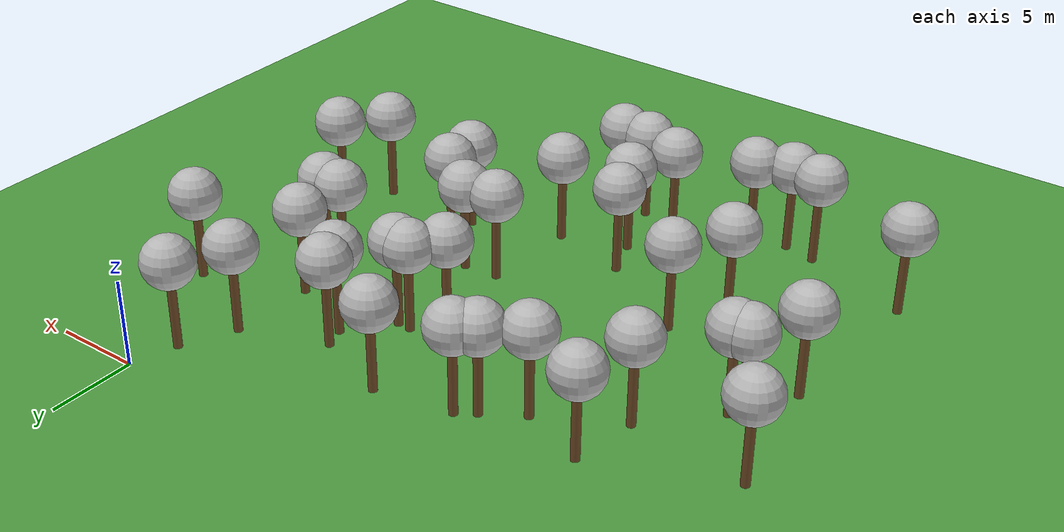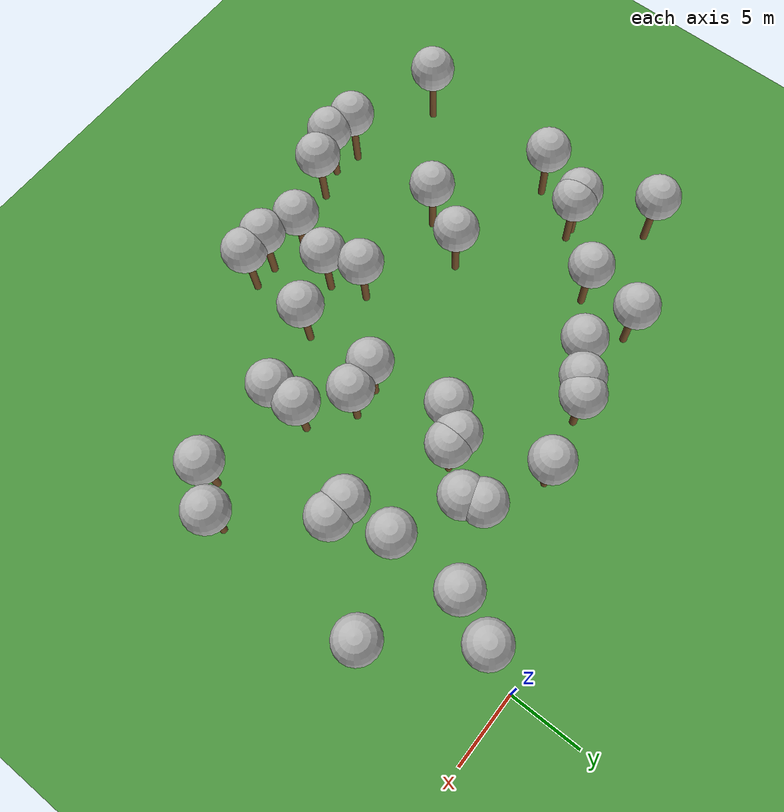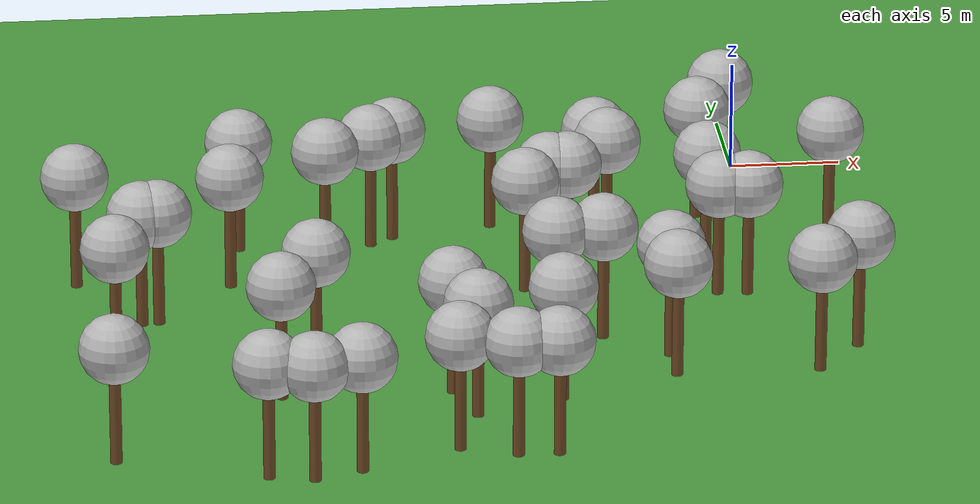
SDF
<sdf version="1.5">
 <world name="default">
  <model name="tree_simple418">
   <static>1</static>
   <link name="link">
    <pose>0 0 0.1 0 -0 0</pose>
    <collision name="collision_trunk">
     <pose>0 0 2 0 -0 0</pose>
     <geometry><cylinder><radius>0.25</radius><length>4</length></cylinder></geometry>
    </collision>
    <collision name="collision_treetop">
     <pose>0 0 5.2 0 -0 0</pose>
     <geometry><sphere><radius>1.5</radius></sphere></geometry>
    </collision>
    <visual name="trunk">
     <pose>0 0 2 0 -0 0</pose>
     <geometry><cylinder><radius>0.25</radius><length>4</length></cylinder></geometry>
     <material>
      <script>
       <uri>model://tree_simple/scripts</uri>
       <uri>model://tree_simple/materials/textures</uri>
       <name>TreeSimple/Trunk</name>
      </script>
     </material>
    </visual>
    <visual name="treetop">
     <pose>0 0 5.2 0 -0 0</pose>
     <geometry><sphere><radius>1.5</radius></sphere></geometry>
     <material>
      <script>
       <uri>model://tree_simple/scripts</uri>
       <uri>model://tree_simple/materials/textures</uri>
       <name>TreeSimple/Treetop</name>
      </script>
     </material>
    </visual>
   </link>
   <pose>-22.9841604277 -7.39292719752 0 0 -0 0</pose>
  </model>
  <model name="tree_simple415">
   <static>1</static>
   <link name="link">
    <pose>0 0 0.1 0 -0 0</pose>
    <collision name="collision_trunk">
     <pose>0 0 2 0 -0 0</pose>
     <geometry><cylinder><radius>0.25</radius><length>4</length></cylinder></geometry>
    </collision>
    <collision name="collision_treetop">
     <pose>0 0 5.2 0 -0 0</pose>
     <geometry><sphere><radius>1.5</radius></sphere></geometry>
    </collision>
    <visual name="trunk">
     <pose>0 0 2 0 -0 0</pose>
     <geometry><cylinder><radius>0.25</radius><length>4</length></cylinder></geometry>
     <material>
      <script>
       <uri>model://tree_simple/scripts</uri>
       <uri>model://tree_simple/materials/textures</uri>
       <name>TreeSimple/Trunk</name>
      </script>
     </material>
    </visual>
    <visual name="treetop">
     <pose>0 0 5.2 0 -0 0</pose>
     <geometry><sphere><radius>1.5</radius></sphere></geometry>
     <material>
      <script>
       <uri>model://tree_simple/scripts</uri>
       <uri>model://tree_simple/materials/textures</uri>
       <name>TreeSimple/Treetop</name>
      </script>
     </material>
    </visual>
   </link>
   <pose>-11.6355979465 -5.8252534874 0 0 -0 0</pose>
  </model>
  <model name="tree_simple395">
   <static>1</static>
   <link name="link">
    <pose>0 0 0.1 0 -0 0</pose>
    <collision name="collision_trunk">
     <pose>0 0 2 0 -0 0</pose>
     <geometry><cylinder><radius>0.25</radius><length>4</length></cylinder></geometry>
    </collision>
    <collision name="collision_treetop">
     <pose>0 0 5.2 0 -0 0</pose>
     <geometry><sphere><radius>1.5</radius></sphere></geometry>
    </collision>
    <visual name="trunk">
     <pose>0 0 2 0 -0 0</pose>
     <geometry><cylinder><radius>0.25</radius><length>4</length></cylinder></geometry>
     <material>
      <script>
       <uri>model://tree_simple/scripts</uri>
       <uri>model://tree_simple/materials/textures</uri>
       <name>TreeSimple/Trunk</name>
      </script>
     </material>
    </visual>
    <visual name="treetop">
     <pose>0 0 5.2 0 -0 0</pose>
     <geometry><sphere><radius>1.5</radius></sphere></geometry>
     <material>
      <script>
       <uri>model://tree_simple/scripts</uri>
       <uri>model://tree_simple/materials/textures</uri>
       <name>TreeSimple/Treetop</name>
      </script>
     </material>
    </visual>
   </link>
   <pose>-14.8909068885 -23.0244241553 0 0 -0 0</pose>
  </model>
  <model name="tree_simple392">
   <static>1</static>
   <link name="link">
    <pose>0 0 0.1 0 -0 0</pose>
    <collision name="collision_trunk">
     <pose>0 0 2 0 -0 0</pose>
     <geometry><cylinder><radius>0.25</radius><length>4</length></cylinder></geometry>
    </collision>
    <collision name="collision_treetop">
     <pose>0 0 5.2 0 -0 0</pose>
     <geometry><sphere><radius>1.5</radius></sphere></geometry>
    </collision>
    <visual name="trunk">
     <pose>0 0 2 0 -0 0</pose>
     <geometry><cylinder><radius>0.25</radius><length>4</length></cylinder></geometry>
     <material>
      <script>
       <uri>model://tree_simple/scripts</uri>
       <uri>model://tree_simple/materials/textures</uri>
       <name>TreeSimple/Trunk</name>
      </script>
     </material>
    </visual>
    <visual name="treetop">
     <pose>0 0 5.2 0 -0 0</pose>
     <geometry><sphere><radius>1.5</radius></sphere></geometry>
     <material>
      <script>
       <uri>model://tree_simple/scripts</uri>
       <uri>model://tree_simple/materials/textures</uri>
       <name>TreeSimple/Treetop</name>
      </script>
     </material>
    </visual>
   </link>
   <pose>-2.49227665262 -10.6347787598 0 0 -0 0</pose>
  </model>
  <model name="tree_simple386">
   <static>1</static>
   <link name="link">
    <pose>0 0 0.1 0 -0 0</pose>
    <collision name="collision_trunk">
     <pose>0 0 2 0 -0 0</pose>
     <geometry><cylinder><radius>0.25</radius><length>4</length></cylinder></geometry>
    </collision>
    <collision name="collision_treetop">
     <pose>0 0 5.2 0 -0 0</pose>
     <geometry><sphere><radius>1.5</radius></sphere></geometry>
    </collision>
    <visual name="trunk">
     <pose>0 0 2 0 -0 0</pose>
     <geometry><cylinder><radius>0.25</radius><length>4</length></cylinder></geometry>
     <material>
      <script>
       <uri>model://tree_simple/scripts</uri>
       <uri>model://tree_simple/materials/textures</uri>
       <name>TreeSimple/Trunk</name>
      </script>
     </material>
    </visual>
    <visual name="treetop">
     <pose>0 0 5.2 0 -0 0</pose>
     <geometry><sphere><radius>1.5</radius></sphere></geometry>
     <material>
      <script>
       <uri>model://tree_simple/scripts</uri>
       <uri>model://tree_simple/materials/textures</uri>
       <name>TreeSimple/Treetop</name>
      </script>
     </material>
    </visual>
   </link>
   <pose>-19.2490777258 -8.77456979873 0 0 -0 0</pose>
  </model>
  <model name="tree_simple371">
   <static>1</static>
   <link name="link">
    <pose>0 0 0.1 0 -0 0</pose>
    <collision name="collision_trunk">
     <pose>0 0 2 0 -0 0</pose>
     <geometry><cylinder><radius>0.25</radius><length>4</length></cylinder></geometry>
    </collision>
    <collision name="collision_treetop">
     <pose>0 0 5.2 0 -0 0</pose>
     <geometry><sphere><radius>1.5</radius></sphere></geometry>
    </collision>
    <visual name="trunk">
     <pose>0 0 2 0 -0 0</pose>
     <geometry><cylinder><radius>0.25</radius><length>4</length></cylinder></geometry>
     <material>
      <script>
       <uri>model://tree_simple/scripts</uri>
       <uri>model://tree_simple/materials/textures</uri>
       <name>TreeSimple/Trunk</name>
      </script>
     </material>
    </visual>
    <visual name="treetop">
     <pose>0 0 5.2 0 -0 0</pose>
     <geometry><sphere><radius>1.5</radius></sphere></geometry>
     <material>
      <script>
       <uri>model://tree_simple/scripts</uri>
       <uri>model://tree_simple/materials/textures</uri>
       <name>TreeSimple/Treetop</name>
      </script>
     </material>
    </visual>
   </link>
   <pose>-15.0952400949 -28.608477139 0 0 -0 0</pose>
  </model>
  <model name="tree_simple364">
   <static>1</static>
   <link name="link">
    <pose>0 0 0.1 0 -0 0</pose>
    <collision name="collision_trunk">
     <pose>0 0 2 0 -0 0</pose>
     <geometry><cylinder><radius>0.25</radius><length>4</length></cylinder></geometry>
    </collision>
    <collision name="collision_treetop">
     <pose>0 0 5.2 0 -0 0</pose>
     <geometry><sphere><radius>1.5</radius></sphere></geometry>
    </collision>
    <visual name="trunk">
     <pose>0 0 2 0 -0 0</pose>
     <geometry><cylinder><radius>0.25</radius><length>4</length></cylinder></geometry>
     <material>
      <script>
       <uri>model://tree_simple/scripts</uri>
       <uri>model://tree_simple/materials/textures</uri>
       <name>TreeSimple/Trunk</name>
      </script>
     </material>
    </visual>
    <visual name="treetop">
     <pose>0 0 5.2 0 -0 0</pose>
     <geometry><sphere><radius>1.5</radius></sphere></geometry>
     <material>
      <script>
       <uri>model://tree_simple/scripts</uri>
       <uri>model://tree_simple/materials/textures</uri>
       <name>TreeSimple/Treetop</name>
      </script>
     </material>
    </visual>
   </link>
   <pose>-5.23612591395 -20.1562951187 0 0 -0 0</pose>
  </model>
  <model name="tree_simple349">
   <static>1</static>
   <link name="link">
    <pose>0 0 0.1 0 -0 0</pose>
    <collision name="collision_trunk">
     <pose>0 0 2 0 -0 0</pose>
     <geometry><cylinder><radius>0.25</radius><length>4</length></cylinder></geometry>
    </collision>
    <collision name="collision_treetop">
     <pose>0 0 5.2 0 -0 0</pose>
     <geometry><sphere><radius>1.5</radius></sphere></geometry>
    </collision>
    <visual name="trunk">
     <pose>0 0 2 0 -0 0</pose>
     <geometry><cylinder><radius>0.25</radius><length>4</length></cylinder></geometry>
     <material>
      <script>
       <uri>model://tree_simple/scripts</uri>
       <uri>model://tree_simple/materials/textures</uri>
       <name>TreeSimple/Trunk</name>
      </script>
     </material>
    </visual>
    <visual name="treetop">
     <pose>0 0 5.2 0 -0 0</pose>
     <geometry><sphere><radius>1.5</radius></sphere></geometry>
     <material>
      <script>
       <uri>model://tree_simple/scripts</uri>
       <uri>model://tree_simple/materials/textures</uri>
       <name>TreeSimple/Treetop</name>
      </script>
     </material>
    </visual>
   </link>
   <pose>-20.4686708935 -19.6389151122 0 0 -0 0</pose>
  </model>
  <model name="tree_simple347">
   <static>1</static>
   <link name="link">
    <pose>0 0 0.1 0 -0 0</pose>
    <collision name="collision_trunk">
     <pose>0 0 2 0 -0 0</pose>
     <geometry><cylinder><radius>0.25</radius><length>4</length></cylinder></geometry>
    </collision>
    <collision name="collision_treetop">
     <pose>0 0 5.2 0 -0 0</pose>
     <geometry><sphere><radius>1.5</radius></sphere></geometry>
    </collision>
    <visual name="trunk">
     <pose>0 0 2 0 -0 0</pose>
     <geometry><cylinder><radius>0.25</radius><length>4</length></cylinder></geometry>
     <material>
      <script>
       <uri>model://tree_simple/scripts</uri>
       <uri>model://tree_simple/materials/textures</uri>
       <name>TreeSimple/Trunk</name>
      </script>
     </material>
    </visual>
    <visual name="treetop">
     <pose>0 0 5.2 0 -0 0</pose>
     <geometry><sphere><radius>1.5</radius></sphere></geometry>
     <material>
      <script>
       <uri>model://tree_simple/scripts</uri>
       <uri>model://tree_simple/materials/textures</uri>
       <name>TreeSimple/Treetop</name>
      </script>
     </material>
    </visual>
   </link>
   <pose>-10.2981062424 -24.1175281228 0 0 -0 0</pose>
  </model>
  <model name="tree_simple322">
   <static>1</static>
   <link name="link">
    <pose>0 0 0.1 0 -0 0</pose>
    <collision name="collision_trunk">
     <pose>0 0 2 0 -0 0</pose>
     <geometry><cylinder><radius>0.25</radius><length>4</length></cylinder></geometry>
    </collision>
    <collision name="collision_treetop">
     <pose>0 0 5.2 0 -0 0</pose>
     <geometry><sphere><radius>1.5</radius></sphere></geometry>
    </collision>
    <visual name="trunk">
     <pose>0 0 2 0 -0 0</pose>
     <geometry><cylinder><radius>0.25</radius><length>4</length></cylinder></geometry>
     <material>
      <script>
       <uri>model://tree_simple/scripts</uri>
       <uri>model://tree_simple/materials/textures</uri>
       <name>TreeSimple/Trunk</name>
      </script>
     </material>
    </visual>
    <visual name="treetop">
     <pose>0 0 5.2 0 -0 0</pose>
     <geometry><sphere><radius>1.5</radius></sphere></geometry>
     <material>
      <script>
       <uri>model://tree_simple/scripts</uri>
       <uri>model://tree_simple/materials/textures</uri>
       <name>TreeSimple/Treetop</name>
      </script>
     </material>
    </visual>
   </link>
   <pose>-10.7837387112 -12.8598856653 0 0 -0 0</pose>
  </model>
  <model name="tree_simple317">
   <static>1</static>
   <link name="link">
    <pose>0 0 0.1 0 -0 0</pose>
    <collision name="collision_trunk">
     <pose>0 0 2 0 -0 0</pose>
     <geometry><cylinder><radius>0.25</radius><length>4</length></cylinder></geometry>
    </collision>
    <collision name="collision_treetop">
     <pose>0 0 5.2 0 -0 0</pose>
     <geometry><sphere><radius>1.5</radius></sphere></geometry>
    </collision>
    <visual name="trunk">
     <pose>0 0 2 0 -0 0</pose>
     <geometry><cylinder><radius>0.25</radius><length>4</length></cylinder></geometry>
     <material>
      <script>
       <uri>model://tree_simple/scripts</uri>
       <uri>model://tree_simple/materials/textures</uri>
       <name>TreeSimple/Trunk</name>
      </script>
     </material>
    </visual>
    <visual name="treetop">
     <pose>0 0 5.2 0 -0 0</pose>
     <geometry><sphere><radius>1.5</radius></sphere></geometry>
     <material>
      <script>
       <uri>model://tree_simple/scripts</uri>
       <uri>model://tree_simple/materials/textures</uri>
       <name>TreeSimple/Treetop</name>
      </script>
     </material>
    </visual>
   </link>
   <pose>1.01183279708 -22.2370296953 0 0 -0 0</pose>
  </model>
  <model name="tree_simple303">
   <static>1</static>
   <link name="link">
    <pose>0 0 0.1 0 -0 0</pose>
    <collision name="collision_trunk">
     <pose>0 0 2 0 -0 0</pose>
     <geometry><cylinder><radius>0.25</radius><length>4</length></cylinder></geometry>
    </collision>
    <collision name="collision_treetop">
     <pose>0 0 5.2 0 -0 0</pose>
     <geometry><sphere><radius>1.5</radius></sphere></geometry>
    </collision>
    <visual name="trunk">
     <pose>0 0 2 0 -0 0</pose>
     <geometry><cylinder><radius>0.25</radius><length>4</length></cylinder></geometry>
     <material>
      <script>
       <uri>model://tree_simple/scripts</uri>
       <uri>model://tree_simple/materials/textures</uri>
       <name>TreeSimple/Trunk</name>
      </script>
     </material>
    </visual>
    <visual name="treetop">
     <pose>0 0 5.2 0 -0 0</pose>
     <geometry><sphere><radius>1.5</radius></sphere></geometry>
     <material>
      <script>
       <uri>model://tree_simple/scripts</uri>
       <uri>model://tree_simple/materials/textures</uri>
       <name>TreeSimple/Treetop</name>
      </script>
     </material>
    </visual>
   </link>
   <pose>-9.56094886719 -11.2139048457 0 0 -0 0</pose>
  </model>
  <model name="tree_simple276">
   <static>1</static>
   <link name="link">
    <pose>0 0 0.1 0 -0 0</pose>
    <collision name="collision_trunk">
     <pose>0 0 2 0 -0 0</pose>
     <geometry><cylinder><radius>0.25</radius><length>4</length></cylinder></geometry>
    </collision>
    <collision name="collision_treetop">
     <pose>0 0 5.2 0 -0 0</pose>
     <geometry><sphere><radius>1.5</radius></sphere></geometry>
    </collision>
    <visual name="trunk">
     <pose>0 0 2 0 -0 0</pose>
     <geometry><cylinder><radius>0.25</radius><length>4</length></cylinder></geometry>
     <material>
      <script>
       <uri>model://tree_simple/scripts</uri>
       <uri>model://tree_simple/materials/textures</uri>
       <name>TreeSimple/Trunk</name>
      </script>
     </material>
    </visual>
    <visual name="treetop">
     <pose>0 0 5.2 0 -0 0</pose>
     <geometry><sphere><radius>1.5</radius></sphere></geometry>
     <material>
      <script>
       <uri>model://tree_simple/scripts</uri>
       <uri>model://tree_simple/materials/textures</uri>
       <name>TreeSimple/Treetop</name>
      </script>
     </material>
    </visual>
   </link>
   <pose>-29.5152065305 -28.5569261037 0 0 -0 0</pose>
  </model>
  <model name="tree_simple272">
   <static>1</static>
   <link name="link">
    <pose>0 0 0.1 0 -0 0</pose>
    <collision name="collision_trunk">
     <pose>0 0 2 0 -0 0</pose>
     <geometry><cylinder><radius>0.25</radius><length>4</length></cylinder></geometry>
    </collision>
    <collision name="collision_treetop">
     <pose>0 0 5.2 0 -0 0</pose>
     <geometry><sphere><radius>1.5</radius></sphere></geometry>
    </collision>
    <visual name="trunk">
     <pose>0 0 2 0 -0 0</pose>
     <geometry><cylinder><radius>0.25</radius><length>4</length></cylinder></geometry>
     <material>
      <script>
       <uri>model://tree_simple/scripts</uri>
       <uri>model://tree_simple/materials/textures</uri>
       <name>TreeSimple/Trunk</name>
      </script>
     </material>
    </visual>
    <visual name="treetop">
     <pose>0 0 5.2 0 -0 0</pose>
     <geometry><sphere><radius>1.5</radius></sphere></geometry>
     <material>
      <script>
       <uri>model://tree_simple/scripts</uri>
       <uri>model://tree_simple/materials/textures</uri>
       <name>TreeSimple/Treetop</name>
      </script>
     </material>
    </visual>
   </link>
   <pose>-28.9961141051 -18.3973115949 0 0 -0 0</pose>
  </model>
  <model name="tree_simple268">
   <static>1</static>
   <link name="link">
    <pose>0 0 0.1 0 -0 0</pose>
    <collision name="collision_trunk">
     <pose>0 0 2 0 -0 0</pose>
     <geometry><cylinder><radius>0.25</radius><length>4</length></cylinder></geometry>
    </collision>
    <collision name="collision_treetop">
     <pose>0 0 5.2 0 -0 0</pose>
     <geometry><sphere><radius>1.5</radius></sphere></geometry>
    </collision>
    <visual name="trunk">
     <pose>0 0 2 0 -0 0</pose>
     <geometry><cylinder><radius>0.25</radius><length>4</length></cylinder></geometry>
     <material>
      <script>
       <uri>model://tree_simple/scripts</uri>
       <uri>model://tree_simple/materials/textures</uri>
       <name>TreeSimple/Trunk</name>
      </script>
     </material>
    </visual>
    <visual name="treetop">
     <pose>0 0 5.2 0 -0 0</pose>
     <geometry><sphere><radius>1.5</radius></sphere></geometry>
     <material>
      <script>
       <uri>model://tree_simple/scripts</uri>
       <uri>model://tree_simple/materials/textures</uri>
       <name>TreeSimple/Treetop</name>
      </script>
     </material>
    </visual>
   </link>
   <pose>-9.9717965144 -18.2645258901 0 0 -0 0</pose>
  </model>
  <model name="tree_simple262">
   <static>1</static>
   <link name="link">
    <pose>0 0 0.1 0 -0 0</pose>
    <collision name="collision_trunk">
     <pose>0 0 2 0 -0 0</pose>
     <geometry><cylinder><radius>0.25</radius><length>4</length></cylinder></geometry>
    </collision>
    <collision name="collision_treetop">
     <pose>0 0 5.2 0 -0 0</pose>
     <geometry><sphere><radius>1.5</radius></sphere></geometry>
    </collision>
    <visual name="trunk">
     <pose>0 0 2 0 -0 0</pose>
     <geometry><cylinder><radius>0.25</radius><length>4</length></cylinder></geometry>
     <material>
      <script>
       <uri>model://tree_simple/scripts</uri>
       <uri>model://tree_simple/materials/textures</uri>
       <name>TreeSimple/Trunk</name>
      </script>
     </material>
    </visual>
    <visual name="treetop">
     <pose>0 0 5.2 0 -0 0</pose>
     <geometry><sphere><radius>1.5</radius></sphere></geometry>
     <material>
      <script>
       <uri>model://tree_simple/scripts</uri>
       <uri>model://tree_simple/materials/textures</uri>
       <name>TreeSimple/Treetop</name>
      </script>
     </material>
    </visual>
   </link>
   <pose>-23.2560890967 -30.6191265847 0 0 -0 0</pose>
  </model>
  <model name="tree_simple253">
   <static>1</static>
   <link name="link">
    <pose>0 0 0.1 0 -0 0</pose>
    <collision name="collision_trunk">
     <pose>0 0 2 0 -0 0</pose>
     <geometry><cylinder><radius>0.25</radius><length>4</length></cylinder></geometry>
    </collision>
    <collision name="collision_treetop">
     <pose>0 0 5.2 0 -0 0</pose>
     <geometry><sphere><radius>1.5</radius></sphere></geometry>
    </collision>
    <visual name="trunk">
     <pose>0 0 2 0 -0 0</pose>
     <geometry><cylinder><radius>0.25</radius><length>4</length></cylinder></geometry>
     <material>
      <script>
       <uri>model://tree_simple/scripts</uri>
       <uri>model://tree_simple/materials/textures</uri>
       <name>TreeSimple/Trunk</name>
      </script>
     </material>
    </visual>
    <visual name="treetop">
     <pose>0 0 5.2 0 -0 0</pose>
     <geometry><sphere><radius>1.5</radius></sphere></geometry>
     <material>
      <script>
       <uri>model://tree_simple/scripts</uri>
       <uri>model://tree_simple/materials/textures</uri>
       <name>TreeSimple/Treetop</name>
      </script>
     </material>
    </visual>
   </link>
   <pose>-6.71887912458 -8.7537434381 0 0 -0 0</pose>
  </model>
  <model name="tree_simple234">
   <static>1</static>
   <link name="link">
    <pose>0 0 0.1 0 -0 0</pose>
    <collision name="collision_trunk">
     <pose>0 0 2 0 -0 0</pose>
     <geometry><cylinder><radius>0.25</radius><length>4</length></cylinder></geometry>
    </collision>
    <collision name="collision_treetop">
     <pose>0 0 5.2 0 -0 0</pose>
     <geometry><sphere><radius>1.5</radius></sphere></geometry>
    </collision>
    <visual name="trunk">
     <pose>0 0 2 0 -0 0</pose>
     <geometry><cylinder><radius>0.25</radius><length>4</length></cylinder></geometry>
     <material>
      <script>
       <uri>model://tree_simple/scripts</uri>
       <uri>model://tree_simple/materials/textures</uri>
       <name>TreeSimple/Trunk</name>
      </script>
     </material>
    </visual>
    <visual name="treetop">
     <pose>0 0 5.2 0 -0 0</pose>
     <geometry><sphere><radius>1.5</radius></sphere></geometry>
     <material>
      <script>
       <uri>model://tree_simple/scripts</uri>
       <uri>model://tree_simple/materials/textures</uri>
       <name>TreeSimple/Treetop</name>
      </script>
     </material>
    </visual>
   </link>
   <pose>-7.13671903639 -7.51188908491 0 0 -0 0</pose>
  </model>
  <model name="tree_simple201">
   <static>1</static>
   <link name="link">
    <pose>0 0 0.1 0 -0 0</pose>
    <collision name="collision_trunk">
     <pose>0 0 2 0 -0 0</pose>
     <geometry><cylinder><radius>0.25</radius><length>4</length></cylinder></geometry>
    </collision>
    <collision name="collision_treetop">
     <pose>0 0 5.2 0 -0 0</pose>
     <geometry><sphere><radius>1.5</radius></sphere></geometry>
    </collision>
    <visual name="trunk">
     <pose>0 0 2 0 -0 0</pose>
     <geometry><cylinder><radius>0.25</radius><length>4</length></cylinder></geometry>
     <material>
      <script>
       <uri>model://tree_simple/scripts</uri>
       <uri>model://tree_simple/materials/textures</uri>
       <name>TreeSimple/Trunk</name>
      </script>
     </material>
    </visual>
    <visual name="treetop">
     <pose>0 0 5.2 0 -0 0</pose>
     <geometry><sphere><radius>1.5</radius></sphere></geometry>
     <material>
      <script>
       <uri>model://tree_simple/scripts</uri>
       <uri>model://tree_simple/materials/textures</uri>
       <name>TreeSimple/Treetop</name>
      </script>
     </material>
    </visual>
   </link>
   <pose>-16.1062713361 -6.72563548396 0 0 -0 0</pose>
  </model>
  <model name="tree_simple200">
   <static>1</static>
   <link name="link">
    <pose>0 0 0.1 0 -0 0</pose>
    <collision name="collision_trunk">
     <pose>0 0 2 0 -0 0</pose>
     <geometry><cylinder><radius>0.25</radius><length>4</length></cylinder></geometry>
    </collision>
    <collision name="collision_treetop">
     <pose>0 0 5.2 0 -0 0</pose>
     <geometry><sphere><radius>1.5</radius></sphere></geometry>
    </collision>
    <visual name="trunk">
     <pose>0 0 2 0 -0 0</pose>
     <geometry><cylinder><radius>0.25</radius><length>4</length></cylinder></geometry>
     <material>
      <script>
       <uri>model://tree_simple/scripts</uri>
       <uri>model://tree_simple/materials/textures</uri>
       <name>TreeSimple/Trunk</name>
      </script>
     </material>
    </visual>
    <visual name="treetop">
     <pose>0 0 5.2 0 -0 0</pose>
     <geometry><sphere><radius>1.5</radius></sphere></geometry>
     <material>
      <script>
       <uri>model://tree_simple/scripts</uri>
       <uri>model://tree_simple/materials/textures</uri>
       <name>TreeSimple/Treetop</name>
      </script>
     </material>
    </visual>
   </link>
   <pose>-22.1853775811 -22.9371972628 0 0 -0 0</pose>
  </model>
  <model name="tree_simple195">
   <static>1</static>
   <link name="link">
    <pose>0 0 0.1 0 -0 0</pose>
    <collision name="collision_trunk">
     <pose>0 0 2 0 -0 0</pose>
     <geometry><cylinder><radius>0.25</radius><length>4</length></cylinder></geometry>
    </collision>
    <collision name="collision_treetop">
     <pose>0 0 5.2 0 -0 0</pose>
     <geometry><sphere><radius>1.5</radius></sphere></geometry>
    </collision>
    <visual name="trunk">
     <pose>0 0 2 0 -0 0</pose>
     <geometry><cylinder><radius>0.25</radius><length>4</length></cylinder></geometry>
     <material>
      <script>
       <uri>model://tree_simple/scripts</uri>
       <uri>model://tree_simple/materials/textures</uri>
       <name>TreeSimple/Trunk</name>
      </script>
     </material>
    </visual>
    <visual name="treetop">
     <pose>0 0 5.2 0 -0 0</pose>
     <geometry><sphere><radius>1.5</radius></sphere></geometry>
     <material>
      <script>
       <uri>model://tree_simple/scripts</uri>
       <uri>model://tree_simple/materials/textures</uri>
       <name>TreeSimple/Treetop</name>
      </script>
     </material>
    </visual>
   </link>
   <pose>2.97634626893 -19.931363898 0 0 -0 0</pose>
  </model>
  <model name="tree_simple194">
   <static>1</static>
   <link name="link">
    <pose>0 0 0.1 0 -0 0</pose>
    <collision name="collision_trunk">
     <pose>0 0 2 0 -0 0</pose>
     <geometry><cylinder><radius>0.25</radius><length>4</length></cylinder></geometry>
    </collision>
    <collision name="collision_treetop">
     <pose>0 0 5.2 0 -0 0</pose>
     <geometry><sphere><radius>1.5</radius></sphere></geometry>
    </collision>
    <visual name="trunk">
     <pose>0 0 2 0 -0 0</pose>
     <geometry><cylinder><radius>0.25</radius><length>4</length></cylinder></geometry>
     <material>
      <script>
       <uri>model://tree_simple/scripts</uri>
       <uri>model://tree_simple/materials/textures</uri>
       <name>TreeSimple/Trunk</name>
      </script>
     </material>
    </visual>
    <visual name="treetop">
     <pose>0 0 5.2 0 -0 0</pose>
     <geometry><sphere><radius>1.5</radius></sphere></geometry>
     <material>
      <script>
       <uri>model://tree_simple/scripts</uri>
       <uri>model://tree_simple/materials/textures</uri>
       <name>TreeSimple/Treetop</name>
      </script>
     </material>
    </visual>
   </link>
   <pose>-23.6189562951 -11.2622665902 0 0 -0 0</pose>
  </model>
  <model name="tree_simple166">
   <static>1</static>
   <link name="link">
    <pose>0 0 0.1 0 -0 0</pose>
    <collision name="collision_trunk">
     <pose>0 0 2 0 -0 0</pose>
     <geometry><cylinder><radius>0.25</radius><length>4</length></cylinder></geometry>
    </collision>
    <collision name="collision_treetop">
     <pose>0 0 5.2 0 -0 0</pose>
     <geometry><sphere><radius>1.5</radius></sphere></geometry>
    </collision>
    <visual name="trunk">
     <pose>0 0 2 0 -0 0</pose>
     <geometry><cylinder><radius>0.25</radius><length>4</length></cylinder></geometry>
     <material>
      <script>
       <uri>model://tree_simple/scripts</uri>
       <uri>model://tree_simple/materials/textures</uri>
       <name>TreeSimple/Trunk</name>
      </script>
     </material>
    </visual>
    <visual name="treetop">
     <pose>0 0 5.2 0 -0 0</pose>
     <geometry><sphere><radius>1.5</radius></sphere></geometry>
     <material>
      <script>
       <uri>model://tree_simple/scripts</uri>
       <uri>model://tree_simple/materials/textures</uri>
       <name>TreeSimple/Treetop</name>
      </script>
     </material>
    </visual>
   </link>
   <pose>-19.3381588268 -30.3399867983 0 0 -0 0</pose>
  </model>
  <model name="tree_simple155">
   <static>1</static>
   <link name="link">
    <pose>0 0 0.1 0 -0 0</pose>
    <collision name="collision_trunk">
     <pose>0 0 2 0 -0 0</pose>
     <geometry><cylinder><radius>0.25</radius><length>4</length></cylinder></geometry>
    </collision>
    <collision name="collision_treetop">
     <pose>0 0 5.2 0 -0 0</pose>
     <geometry><sphere><radius>1.5</radius></sphere></geometry>
    </collision>
    <visual name="trunk">
     <pose>0 0 2 0 -0 0</pose>
     <geometry><cylinder><radius>0.25</radius><length>4</length></cylinder></geometry>
     <material>
      <script>
       <uri>model://tree_simple/scripts</uri>
       <uri>model://tree_simple/materials/textures</uri>
       <name>TreeSimple/Trunk</name>
      </script>
     </material>
    </visual>
    <visual name="treetop">
     <pose>0 0 5.2 0 -0 0</pose>
     <geometry><sphere><radius>1.5</radius></sphere></geometry>
     <material>
      <script>
       <uri>model://tree_simple/scripts</uri>
       <uri>model://tree_simple/materials/textures</uri>
       <name>TreeSimple/Treetop</name>
      </script>
     </material>
    </visual>
   </link>
   <pose>-2.3717624472 -13.9733365428 0 0 -0 0</pose>
  </model>
  <model name="tree_simple154">
   <static>1</static>
   <link name="link">
    <pose>0 0 0.1 0 -0 0</pose>
    <collision name="collision_trunk">
     <pose>0 0 2 0 -0 0</pose>
     <geometry><cylinder><radius>0.25</radius><length>4</length></cylinder></geometry>
    </collision>
    <collision name="collision_treetop">
     <pose>0 0 5.2 0 -0 0</pose>
     <geometry><sphere><radius>1.5</radius></sphere></geometry>
    </collision>
    <visual name="trunk">
     <pose>0 0 2 0 -0 0</pose>
     <geometry><cylinder><radius>0.25</radius><length>4</length></cylinder></geometry>
     <material>
      <script>
       <uri>model://tree_simple/scripts</uri>
       <uri>model://tree_simple/materials/textures</uri>
       <name>TreeSimple/Trunk</name>
      </script>
     </material>
    </visual>
    <visual name="treetop">
     <pose>0 0 5.2 0 -0 0</pose>
     <geometry><sphere><radius>1.5</radius></sphere></geometry>
     <material>
      <script>
       <uri>model://tree_simple/scripts</uri>
       <uri>model://tree_simple/materials/textures</uri>
       <name>TreeSimple/Treetop</name>
      </script>
     </material>
    </visual>
   </link>
   <pose>3.295584565 -8.44091810905 0 0 -0 0</pose>
  </model>
  <model name="tree_simple152">
   <static>1</static>
   <link name="link">
    <pose>0 0 0.1 0 -0 0</pose>
    <collision name="collision_trunk">
     <pose>0 0 2 0 -0 0</pose>
     <geometry><cylinder><radius>0.25</radius><length>4</length></cylinder></geometry>
    </collision>
    <collision name="collision_treetop">
     <pose>0 0 5.2 0 -0 0</pose>
     <geometry><sphere><radius>1.5</radius></sphere></geometry>
    </collision>
    <visual name="trunk">
     <pose>0 0 2 0 -0 0</pose>
     <geometry><cylinder><radius>0.25</radius><length>4</length></cylinder></geometry>
     <material>
      <script>
       <uri>model://tree_simple/scripts</uri>
       <uri>model://tree_simple/materials/textures</uri>
       <name>TreeSimple/Trunk</name>
      </script>
     </material>
    </visual>
    <visual name="treetop">
     <pose>0 0 5.2 0 -0 0</pose>
     <geometry><sphere><radius>1.5</radius></sphere></geometry>
     <material>
      <script>
       <uri>model://tree_simple/scripts</uri>
       <uri>model://tree_simple/materials/textures</uri>
       <name>TreeSimple/Treetop</name>
      </script>
     </material>
    </visual>
   </link>
   <pose>-12.7268570034 -29.4125065477 0 0 -0 0</pose>
  </model>
  <model name="tree_simple149">
   <static>1</static>
   <link name="link">
    <pose>0 0 0.1 0 -0 0</pose>
    <collision name="collision_trunk">
     <pose>0 0 2 0 -0 0</pose>
     <geometry><cylinder><radius>0.25</radius><length>4</length></cylinder></geometry>
    </collision>
    <collision name="collision_treetop">
     <pose>0 0 5.2 0 -0 0</pose>
     <geometry><sphere><radius>1.5</radius></sphere></geometry>
    </collision>
    <visual name="trunk">
     <pose>0 0 2 0 -0 0</pose>
     <geometry><cylinder><radius>0.25</radius><length>4</length></cylinder></geometry>
     <material>
      <script>
       <uri>model://tree_simple/scripts</uri>
       <uri>model://tree_simple/materials/textures</uri>
       <name>TreeSimple/Trunk</name>
      </script>
     </material>
    </visual>
    <visual name="treetop">
     <pose>0 0 5.2 0 -0 0</pose>
     <geometry><sphere><radius>1.5</radius></sphere></geometry>
     <material>
      <script>
       <uri>model://tree_simple/scripts</uri>
       <uri>model://tree_simple/materials/textures</uri>
       <name>TreeSimple/Treetop</name>
      </script>
     </material>
    </visual>
   </link>
   <pose>-30.3771264781 -10.615045033 0 0 -0 0</pose>
  </model>
  <model name="tree_simple140">
   <static>1</static>
   <link name="link">
    <pose>0 0 0.1 0 -0 0</pose>
    <collision name="collision_trunk">
     <pose>0 0 2 0 -0 0</pose>
     <geometry><cylinder><radius>0.25</radius><length>4</length></cylinder></geometry>
    </collision>
    <collision name="collision_treetop">
     <pose>0 0 5.2 0 -0 0</pose>
     <geometry><sphere><radius>1.5</radius></sphere></geometry>
    </collision>
    <visual name="trunk">
     <pose>0 0 2 0 -0 0</pose>
     <geometry><cylinder><radius>0.25</radius><length>4</length></cylinder></geometry>
     <material>
      <script>
       <uri>model://tree_simple/scripts</uri>
       <uri>model://tree_simple/materials/textures</uri>
       <name>TreeSimple/Trunk</name>
      </script>
     </material>
    </visual>
    <visual name="treetop">
     <pose>0 0 5.2 0 -0 0</pose>
     <geometry><sphere><radius>1.5</radius></sphere></geometry>
     <material>
      <script>
       <uri>model://tree_simple/scripts</uri>
       <uri>model://tree_simple/materials/textures</uri>
       <name>TreeSimple/Treetop</name>
      </script>
     </material>
    </visual>
   </link>
   <pose>-1.08104360216 -14.0922455385 0 0 -0 0</pose>
  </model>
  <model name="tree_simple138">
   <static>1</static>
   <link name="link">
    <pose>0 0 0.1 0 -0 0</pose>
    <collision name="collision_trunk">
     <pose>0 0 2 0 -0 0</pose>
     <geometry><cylinder><radius>0.25</radius><length>4</length></cylinder></geometry>
    </collision>
    <collision name="collision_treetop">
     <pose>0 0 5.2 0 -0 0</pose>
     <geometry><sphere><radius>1.5</radius></sphere></geometry>
    </collision>
    <visual name="trunk">
     <pose>0 0 2 0 -0 0</pose>
     <geometry><cylinder><radius>0.25</radius><length>4</length></cylinder></geometry>
     <material>
      <script>
       <uri>model://tree_simple/scripts</uri>
       <uri>model://tree_simple/materials/textures</uri>
       <name>TreeSimple/Trunk</name>
      </script>
     </material>
    </visual>
    <visual name="treetop">
     <pose>0 0 5.2 0 -0 0</pose>
     <geometry><sphere><radius>1.5</radius></sphere></geometry>
     <material>
      <script>
       <uri>model://tree_simple/scripts</uri>
       <uri>model://tree_simple/materials/textures</uri>
       <name>TreeSimple/Treetop</name>
      </script>
     </material>
    </visual>
   </link>
   <pose>-8.7404095495 -11.2488158501 0 0 -0 0</pose>
  </model>
  <model name="tree_simple106">
   <static>1</static>
   <link name="link">
    <pose>0 0 0.1 0 -0 0</pose>
    <collision name="collision_trunk">
     <pose>0 0 2 0 -0 0</pose>
     <geometry><cylinder><radius>0.25</radius><length>4</length></cylinder></geometry>
    </collision>
    <collision name="collision_treetop">
     <pose>0 0 5.2 0 -0 0</pose>
     <geometry><sphere><radius>1.5</radius></sphere></geometry>
    </collision>
    <visual name="trunk">
     <pose>0 0 2 0 -0 0</pose>
     <geometry><cylinder><radius>0.25</radius><length>4</length></cylinder></geometry>
     <material>
      <script>
       <uri>model://tree_simple/scripts</uri>
       <uri>model://tree_simple/materials/textures</uri>
       <name>TreeSimple/Trunk</name>
      </script>
     </material>
    </visual>
    <visual name="treetop">
     <pose>0 0 5.2 0 -0 0</pose>
     <geometry><sphere><radius>1.5</radius></sphere></geometry>
     <material>
      <script>
       <uri>model://tree_simple/scripts</uri>
       <uri>model://tree_simple/materials/textures</uri>
       <name>TreeSimple/Treetop</name>
      </script>
     </material>
    </visual>
   </link>
   <pose>-0.906213194622 -2.57618131058 0 0 -0 0</pose>
  </model>
  <model name="tree_simple89">
   <static>1</static>
   <link name="link">
    <pose>0 0 0.1 0 -0 0</pose>
    <collision name="collision_trunk">
     <pose>0 0 2 0 -0 0</pose>
     <geometry><cylinder><radius>0.25</radius><length>4</length></cylinder></geometry>
    </collision>
    <collision name="collision_treetop">
     <pose>0 0 5.2 0 -0 0</pose>
     <geometry><sphere><radius>1.5</radius></sphere></geometry>
    </collision>
    <visual name="trunk">
     <pose>0 0 2 0 -0 0</pose>
     <geometry><cylinder><radius>0.25</radius><length>4</length></cylinder></geometry>
     <material>
      <script>
       <uri>model://tree_simple/scripts</uri>
       <uri>model://tree_simple/materials/textures</uri>
       <name>TreeSimple/Trunk</name>
      </script>
     </material>
    </visual>
    <visual name="treetop">
     <pose>0 0 5.2 0 -0 0</pose>
     <geometry><sphere><radius>1.5</radius></sphere></geometry>
     <material>
      <script>
       <uri>model://tree_simple/scripts</uri>
       <uri>model://tree_simple/materials/textures</uri>
       <name>TreeSimple/Treetop</name>
      </script>
     </material>
    </visual>
   </link>
   <pose>-14.0445145291 -25.4354437198 0 0 -0 0</pose>
  </model>
  <model name="tree_simple76">
   <static>1</static>
   <link name="link">
    <pose>0 0 0.1 0 -0 0</pose>
    <collision name="collision_trunk">
     <pose>0 0 2 0 -0 0</pose>
     <geometry><cylinder><radius>0.25</radius><length>4</length></cylinder></geometry>
    </collision>
    <collision name="collision_treetop">
     <pose>0 0 5.2 0 -0 0</pose>
     <geometry><sphere><radius>1.5</radius></sphere></geometry>
    </collision>
    <visual name="trunk">
     <pose>0 0 2 0 -0 0</pose>
     <geometry><cylinder><radius>0.25</radius><length>4</length></cylinder></geometry>
     <material>
      <script>
       <uri>model://tree_simple/scripts</uri>
       <uri>model://tree_simple/materials/textures</uri>
       <name>TreeSimple/Trunk</name>
      </script>
     </material>
    </visual>
    <visual name="treetop">
     <pose>0 0 5.2 0 -0 0</pose>
     <geometry><sphere><radius>1.5</radius></sphere></geometry>
     <material>
      <script>
       <uri>model://tree_simple/scripts</uri>
       <uri>model://tree_simple/materials/textures</uri>
       <name>TreeSimple/Treetop</name>
      </script>
     </material>
    </visual>
   </link>
   <pose>-27.7086729522 -14.9466841588 0 0 -0 0</pose>
  </model>
  <model name="tree_simple64">
   <static>1</static>
   <link name="link">
    <pose>0 0 0.1 0 -0 0</pose>
    <collision name="collision_trunk">
     <pose>0 0 2 0 -0 0</pose>
     <geometry><cylinder><radius>0.25</radius><length>4</length></cylinder></geometry>
    </collision>
    <collision name="collision_treetop">
     <pose>0 0 5.2 0 -0 0</pose>
     <geometry><sphere><radius>1.5</radius></sphere></geometry>
    </collision>
    <visual name="trunk">
     <pose>0 0 2 0 -0 0</pose>
     <geometry><cylinder><radius>0.25</radius><length>4</length></cylinder></geometry>
     <material>
      <script>
       <uri>model://tree_simple/scripts</uri>
       <uri>model://tree_simple/materials/textures</uri>
       <name>TreeSimple/Trunk</name>
      </script>
     </material>
    </visual>
    <visual name="treetop">
     <pose>0 0 5.2 0 -0 0</pose>
     <geometry><sphere><radius>1.5</radius></sphere></geometry>
     <material>
      <script>
       <uri>model://tree_simple/scripts</uri>
       <uri>model://tree_simple/materials/textures</uri>
       <name>TreeSimple/Treetop</name>
      </script>
     </material>
    </visual>
   </link>
   <pose>-5.16461725533 -22.1747780475 0 0 -0 0</pose>
  </model>
  <model name="tree_simple50">
   <static>1</static>
   <link name="link">
    <pose>0 0 0.1 0 -0 0</pose>
    <collision name="collision_trunk">
     <pose>0 0 2 0 -0 0</pose>
     <geometry><cylinder><radius>0.25</radius><length>4</length></cylinder></geometry>
    </collision>
    <collision name="collision_treetop">
     <pose>0 0 5.2 0 -0 0</pose>
     <geometry><sphere><radius>1.5</radius></sphere></geometry>
    </collision>
    <visual name="trunk">
     <pose>0 0 2 0 -0 0</pose>
     <geometry><cylinder><radius>0.25</radius><length>4</length></cylinder></geometry>
     <material>
      <script>
       <uri>model://tree_simple/scripts</uri>
       <uri>model://tree_simple/materials/textures</uri>
       <name>TreeSimple/Trunk</name>
      </script>
     </material>
    </visual>
    <visual name="treetop">
     <pose>0 0 5.2 0 -0 0</pose>
     <geometry><sphere><radius>1.5</radius></sphere></geometry>
     <material>
      <script>
       <uri>model://tree_simple/scripts</uri>
       <uri>model://tree_simple/materials/textures</uri>
       <name>TreeSimple/Treetop</name>
      </script>
     </material>
    </visual>
   </link>
   <pose>-11.0023085291 -29.4422071398 0 0 -0 0</pose>
  </model>
  <model name="tree_simple37">
   <static>1</static>
   <link name="link">
    <pose>0 0 0.1 0 -0 0</pose>
    <collision name="collision_trunk">
     <pose>0 0 2 0 -0 0</pose>
     <geometry><cylinder><radius>0.25</radius><length>4</length></cylinder></geometry>
    </collision>
    <collision name="collision_treetop">
     <pose>0 0 5.2 0 -0 0</pose>
     <geometry><sphere><radius>1.5</radius></sphere></geometry>
    </collision>
    <visual name="trunk">
     <pose>0 0 2 0 -0 0</pose>
     <geometry><cylinder><radius>0.25</radius><length>4</length></cylinder></geometry>
     <material>
      <script>
       <uri>model://tree_simple/scripts</uri>
       <uri>model://tree_simple/materials/textures</uri>
       <name>TreeSimple/Trunk</name>
      </script>
     </material>
    </visual>
    <visual name="treetop">
     <pose>0 0 5.2 0 -0 0</pose>
     <geometry><sphere><radius>1.5</radius></sphere></geometry>
     <material>
      <script>
       <uri>model://tree_simple/scripts</uri>
       <uri>model://tree_simple/materials/textures</uri>
       <name>TreeSimple/Treetop</name>
      </script>
     </material>
    </visual>
   </link>
   <pose>-17.1200971999 -7.42377639458 0 0 -0 0</pose>
  </model>
  <model name="tree_simple18">
   <static>1</static>
   <link name="link">
    <pose>0 0 0.1 0 -0 0</pose>
    <collision name="collision_trunk">
     <pose>0 0 2 0 -0 0</pose>
     <geometry><cylinder><radius>0.25</radius><length>4</length></cylinder></geometry>
    </collision>
    <collision name="collision_treetop">
     <pose>0 0 5.2 0 -0 0</pose>
     <geometry><sphere><radius>1.5</radius></sphere></geometry>
    </collision>
    <visual name="trunk">
     <pose>0 0 2 0 -0 0</pose>
     <geometry><cylinder><radius>0.25</radius><length>4</length></cylinder></geometry>
     <material>
      <script>
       <uri>model://tree_simple/scripts</uri>
       <uri>model://tree_simple/materials/textures</uri>
       <name>TreeSimple/Trunk</name>
      </script>
     </material>
    </visual>
    <visual name="treetop">
     <pose>0 0 5.2 0 -0 0</pose>
     <geometry><sphere><radius>1.5</radius></sphere></geometry>
     <material>
      <script>
       <uri>model://tree_simple/scripts</uri>
       <uri>model://tree_simple/materials/textures</uri>
       <name>TreeSimple/Treetop</name>
      </script>
     </material>
    </visual>
   </link>
   <pose>-7.91294561281 -18.0894598626 0 0 -0 0</pose>
  </model>
  <model name="tree_simple14">
   <static>1</static>
   <link name="link">
    <pose>0 0 0.1 0 -0 0</pose>
    <collision name="collision_trunk">
     <pose>0 0 2 0 -0 0</pose>
     <geometry><cylinder><radius>0.25</radius><length>4</length></cylinder></geometry>
    </collision>
    <collision name="collision_treetop">
     <pose>0 0 5.2 0 -0 0</pose>
     <geometry><sphere><radius>1.5</radius></sphere></geometry>
    </collision>
    <visual name="trunk">
     <pose>0 0 2 0 -0 0</pose>
     <geometry><cylinder><radius>0.25</radius><length>4</length></cylinder></geometry>
     <material>
      <script>
       <uri>model://tree_simple/scripts</uri>
       <uri>model://tree_simple/materials/textures</uri>
       <name>TreeSimple/Trunk</name>
      </script>
     </material>
    </visual>
    <visual name="treetop">
     <pose>0 0 5.2 0 -0 0</pose>
     <geometry><sphere><radius>1.5</radius></sphere></geometry>
     <material>
      <script>
       <uri>model://tree_simple/scripts</uri>
       <uri>model://tree_simple/materials/textures</uri>
       <name>TreeSimple/Treetop</name>
      </script>
     </material>
    </visual>
   </link>
   <pose>-26.972464012 -14.858879135 0 0 -0 0</pose>
  </model>
  <model name="tree_simple2">
   <static>1</static>
   <link name="link">
    <pose>0 0 0.1 0 -0 0</pose>
    <collision name="collision_trunk">
     <pose>0 0 2 0 -0 0</pose>
     <geometry><cylinder><radius>0.25</radius><length>4</length></cylinder></geometry>
    </collision>
    <collision name="collision_treetop">
     <pose>0 0 5.2 0 -0 0</pose>
     <geometry><sphere><radius>1.5</radius></sphere></geometry>
    </collision>
    <visual name="trunk">
     <pose>0 0 2 0 -0 0</pose>
     <geometry><cylinder><radius>0.25</radius><length>4</length></cylinder></geometry>
     <material>
      <script>
       <uri>model://tree_simple/scripts</uri>
       <uri>model://tree_simple/materials/textures</uri>
       <name>TreeSimple/Trunk</name>
      </script>
     </material>
    </visual>
    <visual name="treetop">
     <pose>0 0 5.2 0 -0 0</pose>
     <geometry><sphere><radius>1.5</radius></sphere></geometry>
     <material>
      <script>
       <uri>model://tree_simple/scripts</uri>
       <uri>model://tree_simple/materials/textures</uri>
       <name>TreeSimple/Treetop</name>
      </script>
     </material>
    </visual>
   </link>
   <pose>-2.32374702534 -5.59991455471 0 0 -0 0</pose>
  </model>
  <model name="tree_simple0">
   <static>1</static>
   <link name="link">
    <pose>0 0 0.1 0 -0 0</pose>
    <collision name="collision_trunk">
     <pose>0 0 2 0 -0 0</pose>
     <geometry><cylinder><radius>0.25</radius><length>4</length></cylinder></geometry>
    </collision>
    <collision name="collision_treetop">
     <pose>0 0 5.2 0 -0 0</pose>
     <geometry><sphere><radius>1.5</radius></sphere></geometry>
    </collision>
    <visual name="trunk">
     <pose>0 0 2 0 -0 0</pose>
     <geometry><cylinder><radius>0.25</radius><length>4</length></cylinder></geometry>
     <material>
      <script>
       <uri>model://tree_simple/scripts</uri>
       <uri>model://tree_simple/materials/textures</uri>
       <name>TreeSimple/Trunk</name>
      </script>
     </material>
    </visual>
    <visual name="treetop">
     <pose>0 0 5.2 0 -0 0</pose>
     <geometry><sphere><radius>1.5</radius></sphere></geometry>
     <material>
      <script>
       <uri>model://tree_simple/scripts</uri>
       <uri>model://tree_simple/materials/textures</uri>
       <name>TreeSimple/Treetop</name>
      </script>
     </material>
    </visual>
   </link>
   <pose>-21.3714553001 -31.0269025129 0 0 -0 0</pose>
  </model>
  <model name="ground_plane">
   <static>true</static>
   <link name="link">
    <collision name="collision">
     <geometry><plane><normal>0 0 1</normal><size>250 250</size></plane></geometry>
     <surface><friction><ode><mu>100</mu><mu2>50</mu2></ode></friction></surface>
    </collision>
    <visual name="grass">
     <cast_shadows>false</cast_shadows>
     <geometry><plane><normal>0 0 1</normal><size>150 250</size></plane></geometry>
     <material>
      <script><uri>file://media/materials/scripts/gazebo.material</uri><name>Gazebo/Grass</name></script>
     </material>
    </visual>
   </link>
  </model>
 </world>
</sdf>
